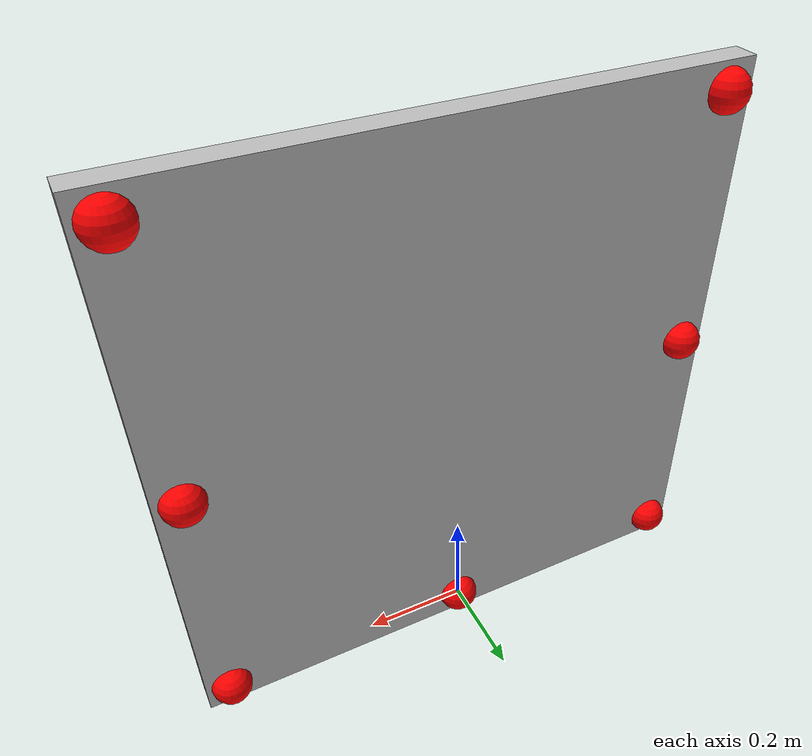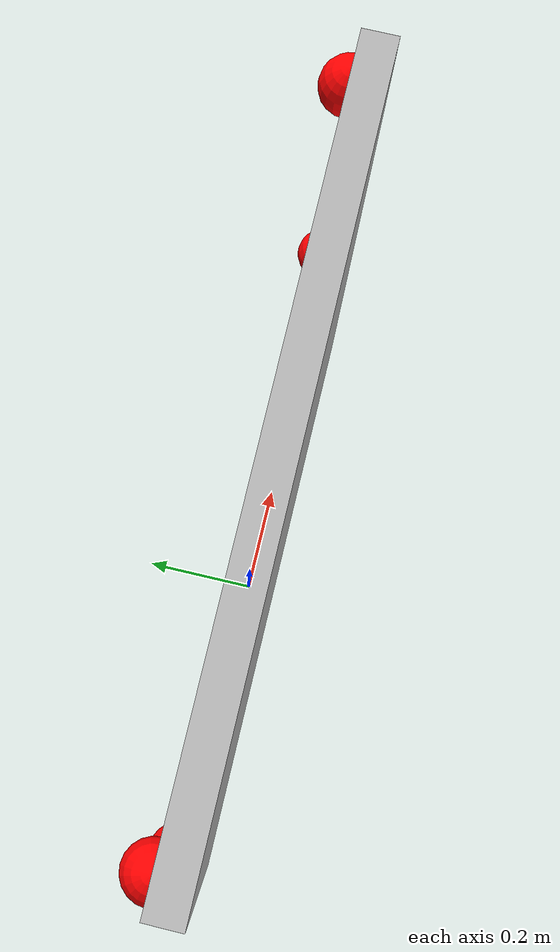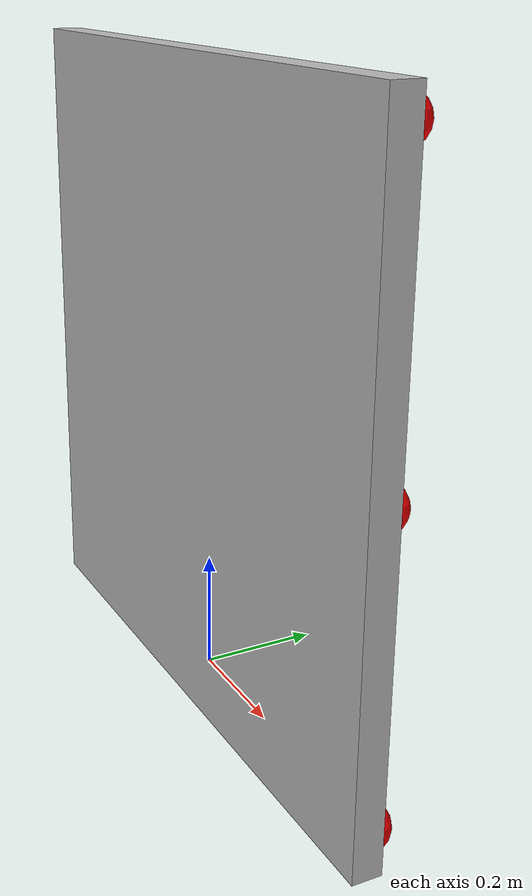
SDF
<?xml version="1.0" ?>
<sdf version="1.5">
  <model name="platform">
    <static>true</static>
    <link name="body">
      <visual name="base">
        <pose>0 -0.025 0.5 0 0 0</pose>
        <geometry>
          <box>
            <size>1.1 0.05 1.1</size>
          </box>
        </geometry>
      </visual>

      <visual name="beacon_1">
        <pose>-0.5 0 0 0 0 0</pose>
        <geometry>
          <sphere>
            <radius>0.04</radius>
          </sphere>
        </geometry>
        <material>
          <ambient>1 0 0 1</ambient>
          <diffuse>1 0 0 1</diffuse>
          <specular>0.1 0.1 0.1 1</specular>
          <emissive>0 0 0 0</emissive>
        </material>
      </visual>

      <visual name="beacon_2">
        <pose>0 0 0 0 0 0</pose>
        <geometry>
          <sphere>
            <radius>0.04</radius>
          </sphere>
        </geometry>
        <material>
          <ambient>1 0 0 1</ambient>
          <diffuse>1 0 0 1</diffuse>
          <specular>0.1 0.1 0.1 1</specular>
          <emissive>0 0 0 0</emissive>
        </material>
      </visual>

      <visual name="beacon_3">
        <pose>0.5 0 0 0 0 0</pose>
        <geometry>
          <sphere>
            <radius>0.04</radius>
          </sphere>
        </geometry>
        <material>
          <ambient>1 0 0 1</ambient>
          <diffuse>1 0 0 1</diffuse>
          <specular>0.1 0.1 0.1 1</specular>
          <emissive>0 0 0 0</emissive>
        </material>
      </visual>

      <visual name="beacon_4">
        <pose>0.5 0 0.5 0 0 0</pose>
        <geometry>
          <sphere>
            <radius>0.04</radius>
          </sphere>
        </geometry>
        <material>
          <ambient>1 0 0 1</ambient>
          <diffuse>1 0 0 1</diffuse>
          <specular>0.1 0.1 0.1 1</specular>
          <emissive>0 0 0 0</emissive>
        </material>
      </visual>

      <visual name="beacon_5">
        <pose>-0.5 0 0.5 0 0 0</pose>
        <geometry>
          <sphere>
            <radius>0.04</radius>
          </sphere>
        </geometry>
        <material>
          <ambient>1 0 0 1</ambient>
          <diffuse>1 0 0 1</diffuse>
          <specular>0.1 0.1 0.1 1</specular>
          <emissive>0 0 0 0</emissive>
        </material>
      </visual>

      <visual name="beacon_6">
        <pose>0.5 0 1 0 0 0</pose>
        <geometry>
          <sphere>
            <radius>0.04</radius>
          </sphere>
        </geometry>
        <material>
          <ambient>1 0 0 1</ambient>
          <diffuse>1 0 0 1</diffuse>
          <specular>0.1 0.1 0.1 1</specular>
          <emissive>0 0 0 0</emissive>
        </material>
      </visual>

      <visual name="beacon_7">
        <pose>-0.5 0 1 0 0 0</pose>
        <geometry>
          <sphere>
            <radius>0.04</radius>
          </sphere>
        </geometry>
        <material>
          <ambient>1 0 0 1</ambient>
          <diffuse>1 0 0 1</diffuse>
          <specular>0.1 0.1 0.1 1</specular>
          <emissive>0 0 0 0</emissive>
        </material>
      </visual>
    </link>
  </model>
</sdf>
